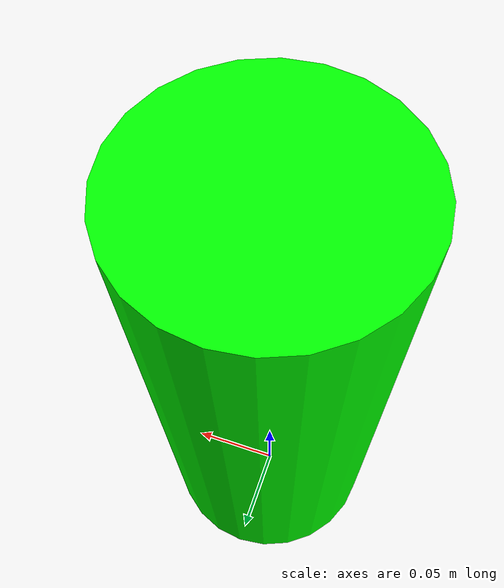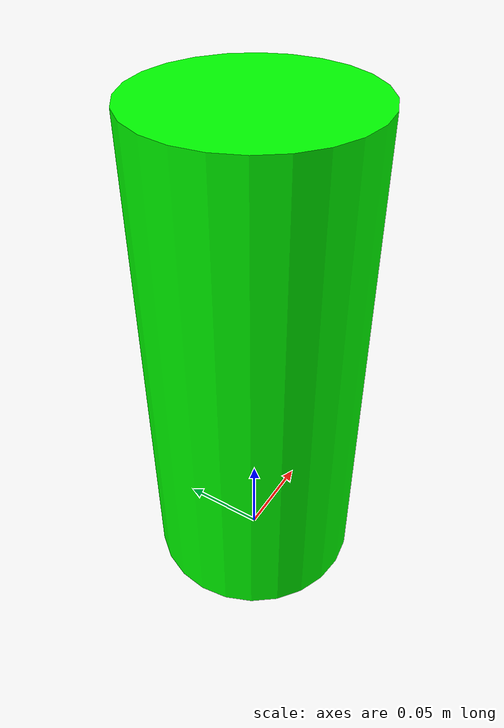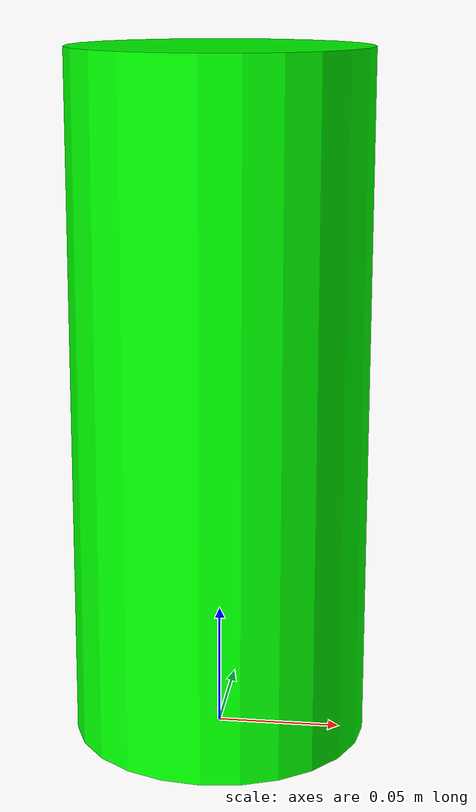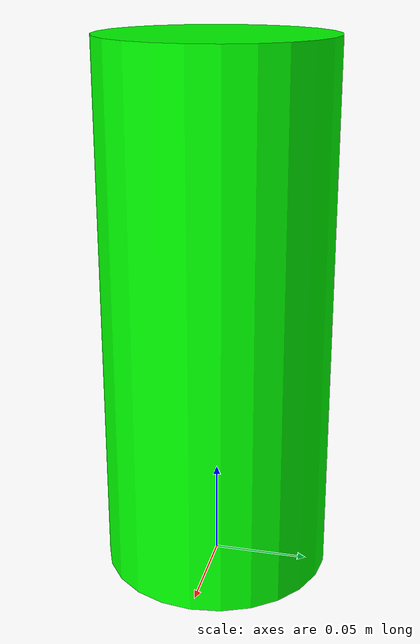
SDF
<sdf version="1.6">
  <model name="cylinder">
    <static>false</static>
    <link name="link">
      <pose>0 0 0.14 0 0 0</pose>
      <collision name="collision">
        <geometry>
          <cylinder>
            <radius>0.06</radius>
            <length>0.28</length>
          </cylinder>
        </geometry>
      </collision>
      <visual name="visual">
        <geometry>
          <cylinder>
            <radius>0.06</radius>
            <length>0.28</length>
          </cylinder>
        </geometry>
        <material>
          <ambient>0 1 0 1</ambient>
        </material>
      </visual>
    </link>
  </model>
</sdf>
